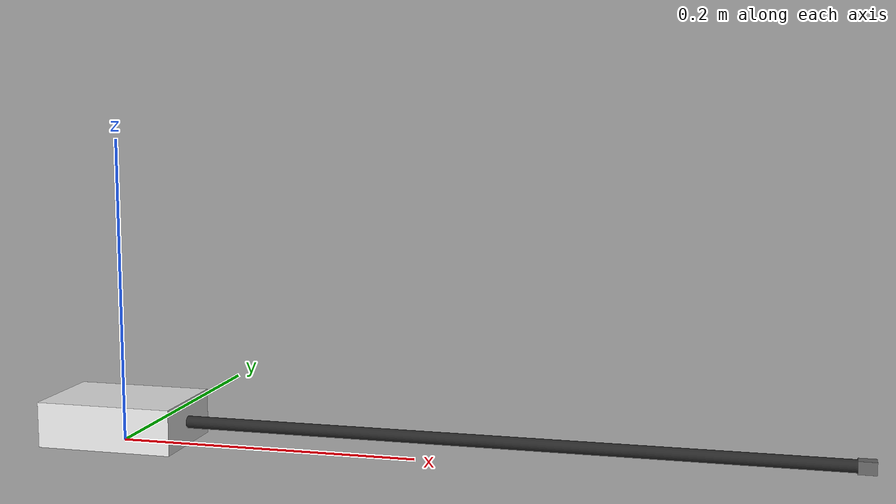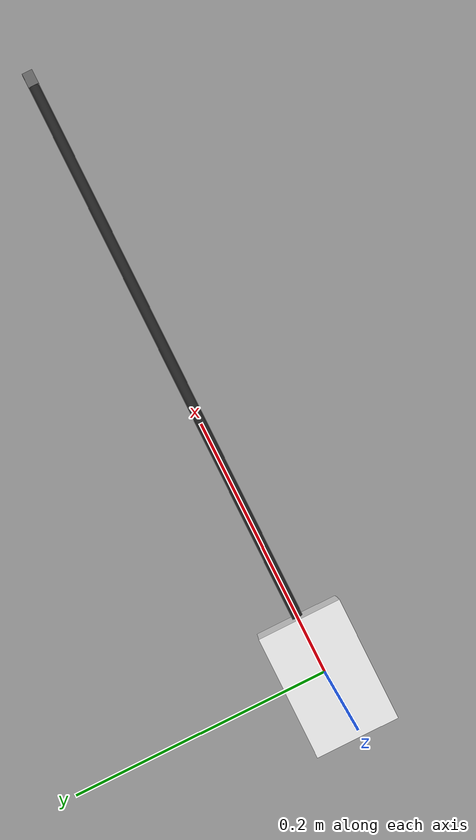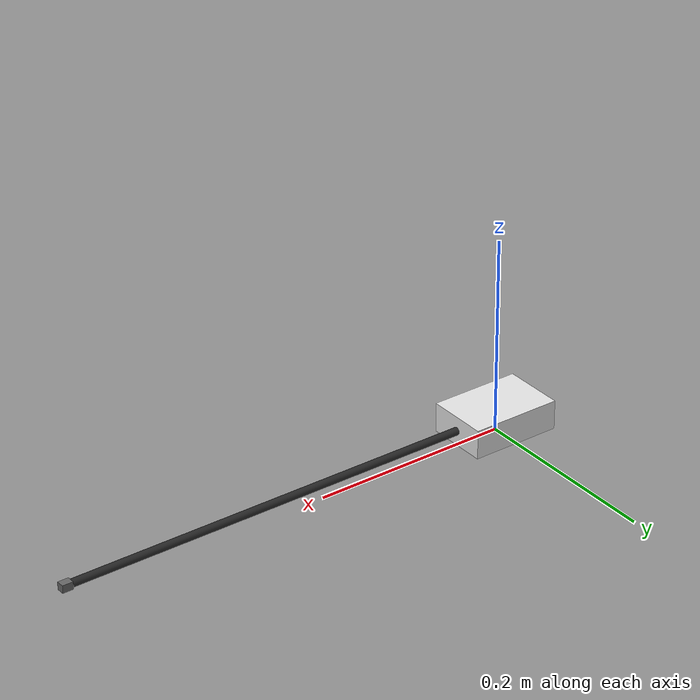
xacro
<?xml version="1.0"?>
<robot xmlns:xacro="http://www.ros.org/wiki/xacro"  name="da_vinci_intrument">

    <xacro:include filename="materials.xacro" />
    <xacro:include filename="inertia_matrices.xacro" />

    <xacro:property name="damping_amount" value="10.0"/>
    <xacro:property name="friction_amount" value="10.0"/>

    <link name="world"></link>

    <joint name="base_joint" type="fixed">
        <origin xyz="0 0 0" rpy="0 0 0"/>
        <parent link="world"/>
        <child link="base_link"/>
    </joint>

    <link name="base_link">
        <visual>
            <origin xyz="0 0 0.015" rpy="0 0 0"/>
            <geometry>
                <box size="0.092 0.063 0.030" />
            </geometry>
            <material name="white"/>
        </visual>
        <collision>
            <origin xyz="0 0 0.015" rpy="0 0 0 "/>
            <geometry>
                <box size="0.092 0.063 0.030" />
            </geometry>
        </collision>
        <xacro:inertial_box mass="${145/1000}" x="${92/1000}" y="${63/1000}" z="${30/1000}">
            <origin xyz="0 0 ${15/1000}" rpy="0 0 0"/>
        </xacro:inertial_box>
    </link>

    <joint name="shaft_joint" type="fixed">
        <origin xyz="0.046 0 0.015" rpy="0 0 0"/>
        <parent link="base_link"/>
        <child link="shaft_link"/>
    </joint>

    <link name="shaft_link">
        <visual>
            <origin xyz="${(423.5/2)/1000} 0 0" rpy="0 ${pi/2} 0"/>
            <geometry>
                <cylinder length="${423.5/1000}" radius="${4/1000}" />
            </geometry>
            <material name="darkGrey"/>
        </visual>
        <collision>
            <origin xyz="${(423.5/2)/1000} 0 0" rpy="0 ${pi/2} 0"/>
            <geometry>
                <cylinder length="${423.5/1000}" radius="${4/1000}" />
            </geometry>
        </collision>
        <xacro:inertial_box mass="${8/1000}" x="${423.5/1000}" y="${8/1000}" z="${8/1000}">
            <origin xyz="${(423.5/2)/1000} 0 0" rpy="0 0 0"/>
        </xacro:inertial_box>
    </link>

    <joint name="shoulder_joint" type="revolute">
        <origin xyz="${423.5/1000} 0 0" rpy="0 0 0"/>
        <parent link="shaft_link"/>
        <child link="shoulder_link"/>
        <axis xyz="1 0 0"/>
        <limit lower="${-(pi/2)}" upper="${pi/2}" velocity="100" effort="100"/>
        <dynamics damping="${damping_amount}" friction="${friction_amount}"/>
    </joint>

    <link name="shoulder_link">
        <visual>
            <origin xyz="${(11/2)/1000} 0 0" rpy="0 0 0"/>
            <geometry>
                <box size="${11/1000} ${8/1000} ${8/1000}"/>
            </geometry>
            <material name="silver"/>
        </visual>
        <collision>
            <origin xyz="${(11/2)/1000} 0 0" rpy="0 0 0"/>
            <geometry>
                <box size="${11/1000} ${8/1000} ${8/1000}"/>
            </geometry>
        </collision>
        <xacro:inertial_box mass="${8/1000}" x="${(11*2)/1000}" y="${(8*2)/1000}" z="${(8*2)/1000}">
            <origin xyz="${(11/2)/1000} 0 0" rpy="0 0 0"/>
        </xacro:inertial_box>
    </link>

    <xacro:include filename="da_vinci_gazebo.xacro" />

</robot>

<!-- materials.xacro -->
<robot xmlns:xacro="http://www.ros.org/wiki/xacro" >

    <!-- This file is not a robot in and of itself, it just contains some useful tags that could be included in any robot -->

    <!-- Specify some colours -->

    <material name="white">
        <color rgba="0.9 0.9 0.9 1"/>
    </material>

    <material name="darkGrey">
        <color rgba="0.15 0.15 0.15 1"/>
    </material>

    <material name="silver">
        <color rgba="0.4 0.4 0.4 1"/>
    </material>

</robot>

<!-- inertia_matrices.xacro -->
<robot xmlns:xacro="http://www.ros.org/wiki/xacro" >

    <xacro:macro name="inertial_box" params="mass x y z *origin">
        <inertial>
            <xacro:insert_block name="origin"/>
            <mass value="${mass}" />
            <inertia ixx="${(1/12) * mass * (y*y+z*z)}" ixy="0.0" ixz="0.0"
                    iyy="${(1/12) * mass * (x*x+z*z)}" iyz="0.0"
                    izz="${(1/12) * mass * (x*x+y*y)}" />
        </inertial>
    </xacro:macro>

    <xacro:macro name="inertial_cylinder" params="mass length radius *origin">
        <inertial>
            <xacro:insert_block name="origin"/>
            <mass value="${mass}" />
            <inertia ixx="${(1/12) * mass * (3*radius*radius + length*length)}" ixy="0.0" ixz="0.0"
                    iyy="${(1/12) * mass * (3*radius*radius + length*length)}" iyz="0.0"
                    izz="${(1/2) * mass * (radius*radius)}" />
        </inertial>
    </xacro:macro>

</robot>
